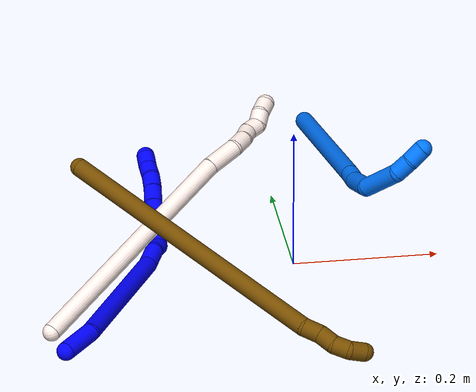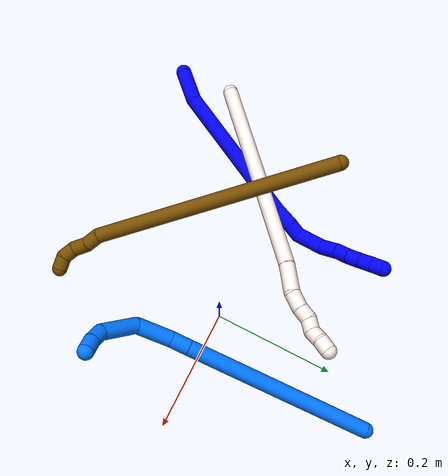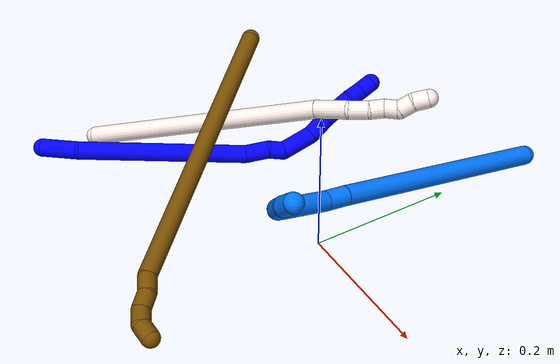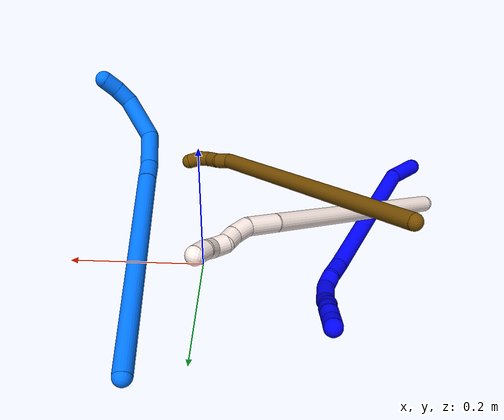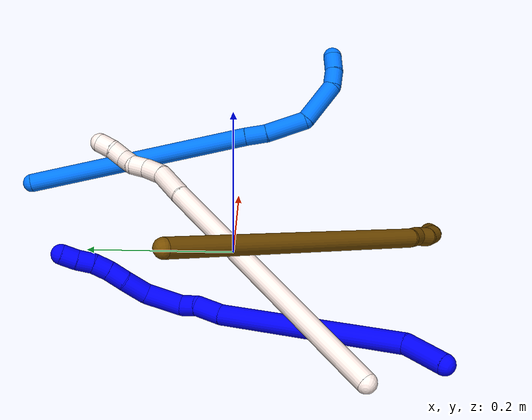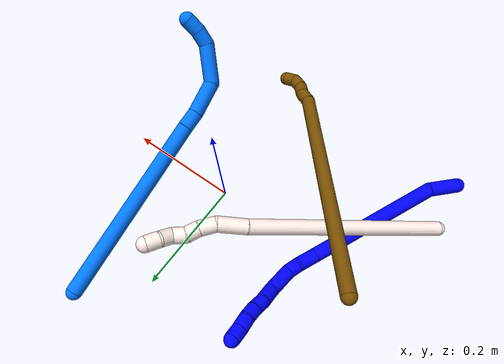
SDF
<sdf version="1.7">
 <world name="default">
  <model name="photoneo_s_sensor">
   <static>1</static>
   <pose>0 0 2 1.57079 1.57079 3.14159</pose>
   <link name="link">
    <inertial><mass>0.1</mass></inertial>
    <sensor name="sensor" type="depth">
     <update_rate>30</update_rate>
     <camera>
      <horizontal_fov>1.22</horizontal_fov>
      <image><width>1920</width><height>1200</height><format>B8G8R8</format></image>
      <clip><near>0.1</near><far>4</far></clip>
      <depth_camera><output>points</output></depth_camera>
     </camera>
     <plugin name="camera_plugin" filename="libgazebo_ros_depth_camera.so">
      <baseline>0.2</baseline>
      <alwaysOn>1</alwaysOn>
      <updateRate>0.0</updateRate>
      <cameraName>camera_ir</cameraName>
      <imageTopicName>/camera/color/image_raw</imageTopicName>
      <cameraInfoTopicName>/camera/color/camera_info</cameraInfoTopicName>
      <depthImageTopicName>/camera/depth/image_raw</depthImageTopicName>
      <depthImageCameraInfoTopicName>/camera/depth/camera_info</depthImageCameraInfoTopicName>
      <pointCloudTopicName>/camera/depth/points</pointCloudTopicName>
      <frameName>fr_optical</frameName>
      <pointCloudCutoff>0.1</pointCloudCutoff>
      <pointCloudCutoffMax>2.0</pointCloudCutoffMax>
      <distortionK1>0</distortionK1>
      <distortionK2>0</distortionK2>
      <distortionK3>0</distortionK3>
      <distortionT1>0</distortionT1>
      <distortionT2>0</distortionT2>
      <CxPrime>0</CxPrime>
      <Cx>0</Cx>
      <Cy>0</Cy>
      <focalLength>0</focalLength>
      <hackBaseline>0</hackBaseline>
     </plugin>
    </sensor>
   </link>
  </model>
  <model name="bin">
   <static>1</static>
   <link name="bottom">
    <collision name="collision-bottom">
     <pose>0 0 -0.01 0 -0 0</pose>
     <geometry><box><size>0.8 0.6 0.02</size></box></geometry>
     <surface>
      <friction><ode><mu>100</mu><mu2>100</mu2></ode></friction>
      <contact><collide_bitmask>65535</collide_bitmask></contact>
     </surface>
    </collision>
   </link>
   <link name="west_wall">
    <collision name="collision-west_wall">
     <pose>-0.41 0 0.1 0 -0 0</pose>
     <geometry><box><size>0.02 0.6 0.2</size></box></geometry>
     <surface>
      <friction><ode><mu>100</mu><mu2>100</mu2></ode></friction>
      <contact><collide_bitmask>65535</collide_bitmask></contact>
     </surface>
    </collision>
   </link>
   <link name="east_wall">
    <collision name="collision-east_wall">
     <pose>0.41 0 0.1 0 -0 0</pose>
     <geometry><box><size>0.02 0.6 0.2</size></box></geometry>
     <surface>
      <friction><ode><mu>100</mu><mu2>100</mu2></ode></friction>
      <contact><collide_bitmask>65535</collide_bitmask></contact>
     </surface>
    </collision>
   </link>
   <link name="south_wall">
    <collision name="collision-south_wall">
     <pose>0 -0.31 0.1 0 -0 0</pose>
     <geometry><box><size>0.8 0.02 0.2</size></box></geometry>
     <surface>
      <friction><ode><mu>100</mu><mu2>100</mu2></ode></friction>
      <contact><collide_bitmask>65535</collide_bitmask></contact>
     </surface>
    </collision>
   </link>
   <link name="north_wall">
    <collision name="collision-north_wall">
     <pose>0 0.31 0.1 0 -0 0</pose>
     <geometry><box><size>0.8 0.02 0.2</size></box></geometry>
     <surface>
      <friction><ode><mu>100</mu><mu2>100</mu2></ode></friction>
      <contact><collide_bitmask>65535</collide_bitmask></contact>
     </surface>
    </collision>
   </link>
  </model>
  <model name="1">
   <static>0</static>
   <link name="1">
    <collision name="collision-cylinder-e_1_1_4">
     <pose>0.000738 0.001942 -0.026256 -3.06776 0.028031 -0.725478</pose>
     <geometry><cylinder><radius>0.0125</radius><length>0.052676</length></cylinder></geometry>
     <surface>
      <friction><ode><mu>1.16</mu><mu2>1.16</mu2><slip1>0</slip1><slip2>0</slip2></ode></friction>
      <contact><ode><kp>1e+06</kp><kd>1</kd><max_vel>0</max_vel><min_depth>0.001</min_depth></ode></contact>
     </surface>
    </collision>
    <visual name="visual-cylinder-e_1_1_4">
     <pose>0.000738 0.001942 -0.026256 -3.06776 0.028031 -0.725478</pose>
     <geometry><cylinder><radius>0.0125</radius><length>0.052676</length></cylinder></geometry>
     <material><ambient>0 0 1 1</ambient></material>
    </visual>
    <collision name="collision-cylinder-e_2_4_5">
     <pose>-0.016686 0.046294 -0.15949 -2.76416 -0.156535 0.779291</pose>
     <geometry><cylinder><radius>0.0125</radius><length>0.233006</length></cylinder></geometry>
     <surface>
      <friction><ode><mu>1.16</mu><mu2>1.16</mu2><slip1>0</slip1><slip2>0</slip2></ode></friction>
      <contact><ode><kp>1e+06</kp><kd>1</kd><max_vel>0</max_vel><min_depth>0.001</min_depth></ode></contact>
     </surface>
    </collision>
    <visual name="visual-cylinder-e_2_4_5">
     <pose>-0.016686 0.046294 -0.15949 -2.76416 -0.156535 0.779291</pose>
     <geometry><cylinder><radius>0.0125</radius><length>0.233006</length></cylinder></geometry>
     <material><ambient>0 0 1 1</ambient></material>
    </visual>
    <collision name="collision-cylinder-e_3_5_6">
     <pose>-0.033446 0.095504 -0.281239 -2.71018 0.08602 -0.387885</pose>
     <geometry><cylinder><radius>0.0125</radius><length>0.032641</length></cylinder></geometry>
     <surface>
      <friction><ode><mu>1.16</mu><mu2>1.16</mu2><slip1>0</slip1><slip2>0</slip2></ode></friction>
      <contact><ode><kp>1e+06</kp><kd>1</kd><max_vel>0</max_vel><min_depth>0.001</min_depth></ode></contact>
     </surface>
    </collision>
    <visual name="visual-cylinder-e_3_5_6">
     <pose>-0.033446 0.095504 -0.281239 -2.71018 0.08602 -0.387885</pose>
     <geometry><cylinder><radius>0.0125</radius><length>0.032641</length></cylinder></geometry>
     <material><ambient>0 0 1 1</ambient></material>
    </visual>
    <collision name="collision-cylinder-e_4_6_7">
     <pose>-0.034839 0.106486 -0.305348 -2.72046 -0.266615 1.12068</pose>
     <geometry><cylinder><radius>0.0125</radius><length>0.021215</length></cylinder></geometry>
     <surface>
      <friction><ode><mu>1.16</mu><mu2>1.16</mu2><slip1>0</slip1><slip2>0</slip2></ode></friction>
      <contact><ode><kp>1e+06</kp><kd>1</kd><max_vel>0</max_vel><min_depth>0.001</min_depth></ode></contact>
     </surface>
    </collision>
    <visual name="visual-cylinder-e_4_6_7">
     <pose>-0.034839 0.106486 -0.305348 -2.72046 -0.266615 1.12068</pose>
     <geometry><cylinder><radius>0.0125</radius><length>0.021215</length></cylinder></geometry>
     <material><ambient>0 0 1 1</ambient></material>
    </visual>
    <collision name="collision-cylinder-e_5_7_8">
     <pose>-0.03236 0.1261 -0.330931 -2.38189 0.23118 -0.566029</pose>
     <geometry><cylinder><radius>0.0125</radius><length>0.046036</length></cylinder></geometry>
     <surface>
      <friction><ode><mu>1.16</mu><mu2>1.16</mu2><slip1>0</slip1><slip2>0</slip2></ode></friction>
      <contact><ode><kp>1e+06</kp><kd>1</kd><max_vel>0</max_vel><min_depth>0.001</min_depth></ode></contact>
     </surface>
    </collision>
    <visual name="visual-cylinder-e_5_7_8">
     <pose>-0.03236 0.1261 -0.330931 -2.38189 0.23118 -0.566029</pose>
     <geometry><cylinder><radius>0.0125</radius><length>0.046036</length></cylinder></geometry>
     <material><ambient>0 0 1 1</ambient></material>
    </visual>
    <collision name="collision-cylinder-e_6_8_9">
     <pose>-0.019172 0.151913 -0.355481 -2.24547 0.536939 -1.03969</pose>
     <geometry><cylinder><radius>0.0125</radius><length>0.030942</length></cylinder></geometry>
     <surface>
      <friction><ode><mu>1.16</mu><mu2>1.16</mu2><slip1>0</slip1><slip2>0</slip2></ode></friction>
      <contact><ode><kp>1e+06</kp><kd>1</kd><max_vel>0</max_vel><min_depth>0.001</min_depth></ode></contact>
     </surface>
    </collision>
    <visual name="visual-cylinder-e_6_8_9">
     <pose>-0.019172 0.151913 -0.355481 -2.24547 0.536939 -1.03969</pose>
     <geometry><cylinder><radius>0.0125</radius><length>0.030942</length></cylinder></geometry>
     <material><ambient>0 0 1 1</ambient></material>
    </visual>
    <collision name="collision-cylinder-e_7_9_10">
     <pose>-0.005789 0.16909 -0.371214 -2.40075 0.497577 -1.15862</pose>
     <geometry><cylinder><radius>0.0125</radius><length>0.022916</length></cylinder></geometry>
     <surface>
      <friction><ode><mu>1.16</mu><mu2>1.16</mu2><slip1>0</slip1><slip2>0</slip2></ode></friction>
      <contact><ode><kp>1e+06</kp><kd>1</kd><max_vel>0</max_vel><min_depth>0.001</min_depth></ode></contact>
     </surface>
    </collision>
    <visual name="visual-cylinder-e_7_9_10">
     <pose>-0.005789 0.16909 -0.371214 -2.40075 0.497577 -1.15862</pose>
     <geometry><cylinder><radius>0.0125</radius><length>0.022916</length></cylinder></geometry>
     <material><ambient>0 0 1 1</ambient></material>
    </visual>
    <collision name="collision-cylinder-e_8_10_11">
     <pose>0.003694 0.182888 -0.384783 -2.29058 0.407026 -0.85462</pose>
     <geometry><cylinder><radius>0.0125</radius><length>0.020282</length></cylinder></geometry>
     <surface>
      <friction><ode><mu>1.16</mu><mu2>1.16</mu2><slip1>0</slip1><slip2>0</slip2></ode></friction>
      <contact><ode><kp>1e+06</kp><kd>1</kd><max_vel>0</max_vel><min_depth>0.001</min_depth></ode></contact>
     </surface>
    </collision>
    <visual name="visual-cylinder-e_8_10_11">
     <pose>0.003694 0.182888 -0.384783 -2.29058 0.407026 -0.85462</pose>
     <geometry><cylinder><radius>0.0125</radius><length>0.020282</length></cylinder></geometry>
     <material><ambient>0 0 1 1</ambient></material>
    </visual>
    <collision name="collision-cylinder-e_9_11_12">
     <pose>0.009529 0.197787 -0.396853 -2.21496 0.182217 -0.361751</pose>
     <geometry><cylinder><radius>0.0125</radius><length>0.020086</length></cylinder></geometry>
     <surface>
      <friction><ode><mu>1.16</mu><mu2>1.16</mu2><slip1>0</slip1><slip2>0</slip2></ode></friction>
      <contact><ode><kp>1e+06</kp><kd>1</kd><max_vel>0</max_vel><min_depth>0.001</min_depth></ode></contact>
     </surface>
    </collision>
    <visual name="visual-cylinder-e_9_11_12">
     <pose>0.009529 0.197787 -0.396853 -2.21496 0.182217 -0.361751</pose>
     <geometry><cylinder><radius>0.0125</radius><length>0.020086</length></cylinder></geometry>
     <material><ambient>0 0 1 1</ambient></material>
    </visual>
    <collision name="collision-cylinder-e_10_12_2">
     <pose>0.014414 0.213034 -0.408998 -2.27268 0.308344 -0.64633</pose>
     <geometry><cylinder><radius>0.0125</radius><length>0.020201</length></cylinder></geometry>
     <surface>
      <friction><ode><mu>1.16</mu><mu2>1.16</mu2><slip1>0</slip1><slip2>0</slip2></ode></friction>
      <contact><ode><kp>1e+06</kp><kd>1</kd><max_vel>0</max_vel><min_depth>0.001</min_depth></ode></contact>
     </surface>
    </collision>
    <visual name="visual-cylinder-e_10_12_2">
     <pose>0.014414 0.213034 -0.408998 -2.27268 0.308344 -0.64633</pose>
     <geometry><cylinder><radius>0.0125</radius><length>0.020201</length></cylinder></geometry>
     <material><ambient>0 0 1 1</ambient></material>
    </visual>
    <collision name="collision-sphere-2">
     <pose>0.017479 0.220383 -0.415212 0 -0 0</pose>
     <geometry><sphere><radius>0.0125</radius></sphere></geometry>
     <surface>
      <friction><ode><mu>1.16</mu><mu2>1.16</mu2><slip1>0</slip1><slip2>0</slip2></ode></friction>
      <contact><ode><kp>1e+06</kp><kd>1</kd><max_vel>0</max_vel><min_depth>0.001</min_depth></ode></contact>
     </surface>
    </collision>
    <visual name="visual-sphere-2">
     <pose>0.017479 0.220383 -0.415212 0 -0 0</pose>
     <geometry><sphere><radius>0.0125</radius></sphere></geometry>
     <material><ambient>0 0 1 1</ambient></material>
    </visual>
    <collision name="collision-sphere-12">
     <pose>0.011348 0.205685 -0.402784 0 -0 0</pose>
     <geometry><sphere><radius>0.0125</radius></sphere></geometry>
     <surface>
      <friction><ode><mu>1.16</mu><mu2>1.16</mu2><slip1>0</slip1><slip2>0</slip2></ode></friction>
      <contact><ode><kp>1e+06</kp><kd>1</kd><max_vel>0</max_vel><min_depth>0.001</min_depth></ode></contact>
     </surface>
    </collision>
    <visual name="visual-sphere-12">
     <pose>0.011348 0.205685 -0.402784 0 -0 0</pose>
     <geometry><sphere><radius>0.0125</radius></sphere></geometry>
     <material><ambient>0 0 1 1</ambient></material>
    </visual>
    <collision name="collision-sphere-11">
     <pose>0.007709 0.18989 -0.390922 0 -0 0</pose>
     <geometry><sphere><radius>0.0125</radius></sphere></geometry>
     <surface>
      <friction><ode><mu>1.16</mu><mu2>1.16</mu2><slip1>0</slip1><slip2>0</slip2></ode></friction>
      <contact><ode><kp>1e+06</kp><kd>1</kd><max_vel>0</max_vel><min_depth>0.001</min_depth></ode></contact>
     </surface>
    </collision>
    <visual name="visual-sphere-11">
     <pose>0.007709 0.18989 -0.390922 0 -0 0</pose>
     <geometry><sphere><radius>0.0125</radius></sphere></geometry>
     <material><ambient>0 0 1 1</ambient></material>
    </visual>
    <collision name="collision-sphere-10">
     <pose>-0.00032 0.175885 -0.378644 0 -0 0</pose>
     <geometry><sphere><radius>0.0125</radius></sphere></geometry>
     <surface>
      <friction><ode><mu>1.16</mu><mu2>1.16</mu2><slip1>0</slip1><slip2>0</slip2></ode></friction>
      <contact><ode><kp>1e+06</kp><kd>1</kd><max_vel>0</max_vel><min_depth>0.001</min_depth></ode></contact>
     </surface>
    </collision>
    <visual name="visual-sphere-10">
     <pose>-0.00032 0.175885 -0.378644 0 -0 0</pose>
     <geometry><sphere><radius>0.0125</radius></sphere></geometry>
     <material><ambient>0 0 1 1</ambient></material>
    </visual>
    <collision name="collision-sphere-9">
     <pose>-0.011258 0.162294 -0.363785 0 -0 0</pose>
     <geometry><sphere><radius>0.0125</radius></sphere></geometry>
     <surface>
      <friction><ode><mu>1.16</mu><mu2>1.16</mu2><slip1>0</slip1><slip2>0</slip2></ode></friction>
      <contact><ode><kp>1e+06</kp><kd>1</kd><max_vel>0</max_vel><min_depth>0.001</min_depth></ode></contact>
     </surface>
    </collision>
    <visual name="visual-sphere-9">
     <pose>-0.011258 0.162294 -0.363785 0 -0 0</pose>
     <geometry><sphere><radius>0.0125</radius></sphere></geometry>
     <material><ambient>0 0 1 1</ambient></material>
    </visual>
    <collision name="collision-sphere-4">
     <pose>0.001476 0.003884 -0.052512 0 -0 0</pose>
     <geometry><sphere><radius>0.0125</radius></sphere></geometry>
     <surface>
      <friction><ode><mu>1.16</mu><mu2>1.16</mu2><slip1>0</slip1><slip2>0</slip2></ode></friction>
      <contact><ode><kp>1e+06</kp><kd>1</kd><max_vel>0</max_vel><min_depth>0.001</min_depth></ode></contact>
     </surface>
    </collision>
    <visual name="visual-sphere-4">
     <pose>0.001476 0.003884 -0.052512 0 -0 0</pose>
     <geometry><sphere><radius>0.0125</radius></sphere></geometry>
     <material><ambient>0 0 1 1</ambient></material>
    </visual>
    <collision name="collision-sphere-1">
     <geometry><sphere><radius>0.0125</radius></sphere></geometry>
     <surface>
      <friction><ode><mu>1.16</mu><mu2>1.16</mu2><slip1>0</slip1><slip2>0</slip2></ode></friction>
      <contact><ode><kp>1e+06</kp><kd>1</kd><max_vel>0</max_vel><min_depth>0.001</min_depth></ode></contact>
     </surface>
    </collision>
    <visual name="visual-sphere-1">
     <geometry><sphere><radius>0.0125</radius></sphere></geometry>
     <material><ambient>0 0 1 1</ambient></material>
    </visual>
    <collision name="collision-sphere-8">
     <pose>-0.027085 0.141531 -0.347176 0 -0 0</pose>
     <geometry><sphere><radius>0.0125</radius></sphere></geometry>
     <surface>
      <friction><ode><mu>1.16</mu><mu2>1.16</mu2><slip1>0</slip1><slip2>0</slip2></ode></friction>
      <contact><ode><kp>1e+06</kp><kd>1</kd><max_vel>0</max_vel><min_depth>0.001</min_depth></ode></contact>
     </surface>
    </collision>
    <visual name="visual-sphere-8">
     <pose>-0.027085 0.141531 -0.347176 0 -0 0</pose>
     <geometry><sphere><radius>0.0125</radius></sphere></geometry>
     <material><ambient>0 0 1 1</ambient></material>
    </visual>
    <collision name="collision-sphere-5">
     <pose>-0.034848 0.088705 -0.266469 0 -0 0</pose>
     <geometry><sphere><radius>0.0125</radius></sphere></geometry>
     <surface>
      <friction><ode><mu>1.16</mu><mu2>1.16</mu2><slip1>0</slip1><slip2>0</slip2></ode></friction>
      <contact><ode><kp>1e+06</kp><kd>1</kd><max_vel>0</max_vel><min_depth>0.001</min_depth></ode></contact>
     </surface>
    </collision>
    <visual name="visual-sphere-5">
     <pose>-0.034848 0.088705 -0.266469 0 -0 0</pose>
     <geometry><sphere><radius>0.0125</radius></sphere></geometry>
     <material><ambient>0 0 1 1</ambient></material>
    </visual>
    <collision name="collision-sphere-6">
     <pose>-0.032044 0.102303 -0.296009 0 -0 0</pose>
     <geometry><sphere><radius>0.0125</radius></sphere></geometry>
     <surface>
      <friction><ode><mu>1.16</mu><mu2>1.16</mu2><slip1>0</slip1><slip2>0</slip2></ode></friction>
      <contact><ode><kp>1e+06</kp><kd>1</kd><max_vel>0</max_vel><min_depth>0.001</min_depth></ode></contact>
     </surface>
    </collision>
    <visual name="visual-sphere-6">
     <pose>-0.032044 0.102303 -0.296009 0 -0 0</pose>
     <geometry><sphere><radius>0.0125</radius></sphere></geometry>
     <material><ambient>0 0 1 1</ambient></material>
    </visual>
    <collision name="collision-sphere-7">
     <pose>-0.037634 0.110669 -0.314686 0 -0 0</pose>
     <geometry><sphere><radius>0.0125</radius></sphere></geometry>
     <surface>
      <friction><ode><mu>1.16</mu><mu2>1.16</mu2><slip1>0</slip1><slip2>0</slip2></ode></friction>
      <contact><ode><kp>1e+06</kp><kd>1</kd><max_vel>0</max_vel><min_depth>0.001</min_depth></ode></contact>
     </surface>
    </collision>
    <visual name="visual-sphere-7">
     <pose>-0.037634 0.110669 -0.314686 0 -0 0</pose>
     <geometry><sphere><radius>0.0125</radius></sphere></geometry>
     <material><ambient>0 0 1 1</ambient></material>
    </visual>
    <inertial>
     <pose>-0.014676 0.085263 -0.225962 0 -0 0</pose>
     <mass>0.5</mass>
     <inertia>
      <ixx>0.001494</ixx>
      <ixy>0</ixy>
      <ixz>0</ixz>
      <iyy>5.2e-05</iyy>
      <iyz>0</iyz>
      <izz>-0.000277</izz>
     </inertia>
    </inertial>
   </link>
   <pose>-0.33686 -0.240636 0.030807 2.17457 -1.50088 -1.43575</pose>
  </model>
  <model name="11">
   <static>0</static>
   <link name="11">
    <collision name="collision-cylinder-e_1_1_4">
     <pose>0.090774 0.085733 -0.119202 -2.51808 0.553708 -1.44526</pose>
     <geometry><cylinder><radius>0.0125</radius><length>0.345248</length></cylinder></geometry>
     <surface>
      <friction><ode><mu>1.16</mu><mu2>1.16</mu2><slip1>0</slip1><slip2>0</slip2></ode></friction>
      <contact><ode><kp>1e+06</kp><kd>1</kd><max_vel>0</max_vel><min_depth>0.001</min_depth></ode></contact>
     </surface>
    </collision>
    <visual name="visual-cylinder-e_1_1_4">
     <pose>0.090774 0.085733 -0.119202 -2.51808 0.553708 -1.44526</pose>
     <geometry><cylinder><radius>0.0125</radius><length>0.345248</length></cylinder></geometry>
     <material><ambient>1 0.933333 0.909804 1</ambient></material>
    </visual>
    <collision name="collision-cylinder-e_2_4_5">
     <pose>0.191119 0.182999 -0.256247 -2.56781 0.423283 -1.25889</pose>
     <geometry><cylinder><radius>0.0125</radius><length>0.046604</length></cylinder></geometry>
     <surface>
      <friction><ode><mu>1.16</mu><mu2>1.16</mu2><slip1>0</slip1><slip2>0</slip2></ode></friction>
      <contact><ode><kp>1e+06</kp><kd>1</kd><max_vel>0</max_vel><min_depth>0.001</min_depth></ode></contact>
     </surface>
    </collision>
    <visual name="visual-cylinder-e_2_4_5">
     <pose>0.191119 0.182999 -0.256247 -2.56781 0.423283 -1.25889</pose>
     <geometry><cylinder><radius>0.0125</radius><length>0.046604</length></cylinder></geometry>
     <material><ambient>1 0.933333 0.909804 1</ambient></material>
    </visual>
    <collision name="collision-cylinder-e_3_5_6">
     <pose>0.206149 0.204403 -0.281019 -2.18278 0.425012 -0.786819</pose>
     <geometry><cylinder><radius>0.0125</radius><length>0.026477</length></cylinder></geometry>
     <surface>
      <friction><ode><mu>1.16</mu><mu2>1.16</mu2><slip1>0</slip1><slip2>0</slip2></ode></friction>
      <contact><ode><kp>1e+06</kp><kd>1</kd><max_vel>0</max_vel><min_depth>0.001</min_depth></ode></contact>
     </surface>
    </collision>
    <visual name="visual-cylinder-e_3_5_6">
     <pose>0.206149 0.204403 -0.281019 -2.18278 0.425012 -0.786819</pose>
     <geometry><cylinder><radius>0.0125</radius><length>0.026477</length></cylinder></geometry>
     <material><ambient>1 0.933333 0.909804 1</ambient></material>
    </visual>
    <collision name="collision-cylinder-e_4_6_7">
     <pose>0.216726 0.222567 -0.291243 -1.94907 0.520797 -0.748233</pose>
     <geometry><cylinder><radius>0.0125</radius><length>0.020573</length></cylinder></geometry>
     <surface>
      <friction><ode><mu>1.16</mu><mu2>1.16</mu2><slip1>0</slip1><slip2>0</slip2></ode></friction>
      <contact><ode><kp>1e+06</kp><kd>1</kd><max_vel>0</max_vel><min_depth>0.001</min_depth></ode></contact>
     </surface>
    </collision>
    <visual name="visual-cylinder-e_4_6_7">
     <pose>0.216726 0.222567 -0.291243 -1.94907 0.520797 -0.748233</pose>
     <geometry><cylinder><radius>0.0125</radius><length>0.020573</length></cylinder></geometry>
     <material><ambient>1 0.933333 0.909804 1</ambient></material>
    </visual>
    <collision name="collision-cylinder-e_5_7_8">
     <pose>0.22532 0.237235 -0.301625 -2.4089 0.349638 -0.862863</pose>
     <geometry><cylinder><radius>0.0125</radius><length>0.020294</length></cylinder></geometry>
     <surface>
      <friction><ode><mu>1.16</mu><mu2>1.16</mu2><slip1>0</slip1><slip2>0</slip2></ode></friction>
      <contact><ode><kp>1e+06</kp><kd>1</kd><max_vel>0</max_vel><min_depth>0.001</min_depth></ode></contact>
     </surface>
    </collision>
    <visual name="visual-cylinder-e_5_7_8">
     <pose>0.22532 0.237235 -0.301625 -2.4089 0.349638 -0.862863</pose>
     <geometry><cylinder><radius>0.0125</radius><length>0.020294</length></cylinder></geometry>
     <material><ambient>1 0.933333 0.909804 1</ambient></material>
    </visual>
    <collision name="collision-cylinder-e_6_8_9">
     <pose>0.236944 0.248176 -0.312333 -2.24151 0.950018 -1.63329</pose>
     <geometry><cylinder><radius>0.0125</radius><length>0.020033</length></cylinder></geometry>
     <surface>
      <friction><ode><mu>1.16</mu><mu2>1.16</mu2><slip1>0</slip1><slip2>0</slip2></ode></friction>
      <contact><ode><kp>1e+06</kp><kd>1</kd><max_vel>0</max_vel><min_depth>0.001</min_depth></ode></contact>
     </surface>
    </collision>
    <visual name="visual-cylinder-e_6_8_9">
     <pose>0.236944 0.248176 -0.312333 -2.24151 0.950018 -1.63329</pose>
     <geometry><cylinder><radius>0.0125</radius><length>0.020033</length></cylinder></geometry>
     <material><ambient>1 0.933333 0.909804 1</ambient></material>
    </visual>
    <collision name="collision-cylinder-e_7_9_2">
     <pose>0.251513 0.259642 -0.320309 -2.13367 0.666708 -1.12141</pose>
     <geometry><cylinder><radius>0.0125</radius><length>0.02077</length></cylinder></geometry>
     <surface>
      <friction><ode><mu>1.16</mu><mu2>1.16</mu2><slip1>0</slip1><slip2>0</slip2></ode></friction>
      <contact><ode><kp>1e+06</kp><kd>1</kd><max_vel>0</max_vel><min_depth>0.001</min_depth></ode></contact>
     </surface>
    </collision>
    <visual name="visual-cylinder-e_7_9_2">
     <pose>0.251513 0.259642 -0.320309 -2.13367 0.666708 -1.12141</pose>
     <geometry><cylinder><radius>0.0125</radius><length>0.02077</length></cylinder></geometry>
     <material><ambient>1 0.933333 0.909804 1</ambient></material>
    </visual>
    <collision name="collision-sphere-2">
     <pose>0.257936 0.266544 -0.324664 0 -0 0</pose>
     <geometry><sphere><radius>0.0125</radius></sphere></geometry>
     <surface>
      <friction><ode><mu>1.16</mu><mu2>1.16</mu2><slip1>0</slip1><slip2>0</slip2></ode></friction>
      <contact><ode><kp>1e+06</kp><kd>1</kd><max_vel>0</max_vel><min_depth>0.001</min_depth></ode></contact>
     </surface>
    </collision>
    <visual name="visual-sphere-2">
     <pose>0.257936 0.266544 -0.324664 0 -0 0</pose>
     <geometry><sphere><radius>0.0125</radius></sphere></geometry>
     <material><ambient>1 0.933333 0.909804 1</ambient></material>
    </visual>
    <collision name="collision-sphere-9">
     <pose>0.245091 0.25274 -0.315954 0 -0 0</pose>
     <geometry><sphere><radius>0.0125</radius></sphere></geometry>
     <surface>
      <friction><ode><mu>1.16</mu><mu2>1.16</mu2><slip1>0</slip1><slip2>0</slip2></ode></friction>
      <contact><ode><kp>1e+06</kp><kd>1</kd><max_vel>0</max_vel><min_depth>0.001</min_depth></ode></contact>
     </surface>
    </collision>
    <visual name="visual-sphere-9">
     <pose>0.245091 0.25274 -0.315954 0 -0 0</pose>
     <geometry><sphere><radius>0.0125</radius></sphere></geometry>
     <material><ambient>1 0.933333 0.909804 1</ambient></material>
    </visual>
    <collision name="collision-sphere-4">
     <pose>0.181547 0.171466 -0.238404 0 -0 0</pose>
     <geometry><sphere><radius>0.0125</radius></sphere></geometry>
     <surface>
      <friction><ode><mu>1.16</mu><mu2>1.16</mu2><slip1>0</slip1><slip2>0</slip2></ode></friction>
      <contact><ode><kp>1e+06</kp><kd>1</kd><max_vel>0</max_vel><min_depth>0.001</min_depth></ode></contact>
     </surface>
    </collision>
    <visual name="visual-sphere-4">
     <pose>0.181547 0.171466 -0.238404 0 -0 0</pose>
     <geometry><sphere><radius>0.0125</radius></sphere></geometry>
     <material><ambient>1 0.933333 0.909804 1</ambient></material>
    </visual>
    <collision name="collision-sphere-1">
     <geometry><sphere><radius>0.0125</radius></sphere></geometry>
     <surface>
      <friction><ode><mu>1.16</mu><mu2>1.16</mu2><slip1>0</slip1><slip2>0</slip2></ode></friction>
      <contact><ode><kp>1e+06</kp><kd>1</kd><max_vel>0</max_vel><min_depth>0.001</min_depth></ode></contact>
     </surface>
    </collision>
    <visual name="visual-sphere-1">
     <geometry><sphere><radius>0.0125</radius></sphere></geometry>
     <material><ambient>1 0.933333 0.909804 1</ambient></material>
    </visual>
    <collision name="collision-sphere-8">
     <pose>0.228796 0.243612 -0.308712 0 -0 0</pose>
     <geometry><sphere><radius>0.0125</radius></sphere></geometry>
     <surface>
      <friction><ode><mu>1.16</mu><mu2>1.16</mu2><slip1>0</slip1><slip2>0</slip2></ode></friction>
      <contact><ode><kp>1e+06</kp><kd>1</kd><max_vel>0</max_vel><min_depth>0.001</min_depth></ode></contact>
     </surface>
    </collision>
    <visual name="visual-sphere-8">
     <pose>0.228796 0.243612 -0.308712 0 -0 0</pose>
     <geometry><sphere><radius>0.0125</radius></sphere></geometry>
     <material><ambient>1 0.933333 0.909804 1</ambient></material>
    </visual>
    <collision name="collision-sphere-5">
     <pose>0.20069 0.194531 -0.27409 0 -0 0</pose>
     <geometry><sphere><radius>0.0125</radius></sphere></geometry>
     <surface>
      <friction><ode><mu>1.16</mu><mu2>1.16</mu2><slip1>0</slip1><slip2>0</slip2></ode></friction>
      <contact><ode><kp>1e+06</kp><kd>1</kd><max_vel>0</max_vel><min_depth>0.001</min_depth></ode></contact>
     </surface>
    </collision>
    <visual name="visual-sphere-5">
     <pose>0.20069 0.194531 -0.27409 0 -0 0</pose>
     <geometry><sphere><radius>0.0125</radius></sphere></geometry>
     <material><ambient>1 0.933333 0.909804 1</ambient></material>
    </visual>
    <collision name="collision-sphere-6">
     <pose>0.211607 0.214275 -0.287948 0 -0 0</pose>
     <geometry><sphere><radius>0.0125</radius></sphere></geometry>
     <surface>
      <friction><ode><mu>1.16</mu><mu2>1.16</mu2><slip1>0</slip1><slip2>0</slip2></ode></friction>
      <contact><ode><kp>1e+06</kp><kd>1</kd><max_vel>0</max_vel><min_depth>0.001</min_depth></ode></contact>
     </surface>
    </collision>
    <visual name="visual-sphere-6">
     <pose>0.211607 0.214275 -0.287948 0 -0 0</pose>
     <geometry><sphere><radius>0.0125</radius></sphere></geometry>
     <material><ambient>1 0.933333 0.909804 1</ambient></material>
    </visual>
    <collision name="collision-sphere-7">
     <pose>0.221844 0.230859 -0.294538 0 -0 0</pose>
     <geometry><sphere><radius>0.0125</radius></sphere></geometry>
     <surface>
      <friction><ode><mu>1.16</mu><mu2>1.16</mu2><slip1>0</slip1><slip2>0</slip2></ode></friction>
      <contact><ode><kp>1e+06</kp><kd>1</kd><max_vel>0</max_vel><min_depth>0.001</min_depth></ode></contact>
     </surface>
    </collision>
    <visual name="visual-sphere-7">
     <pose>0.221844 0.230859 -0.294538 0 -0 0</pose>
     <geometry><sphere><radius>0.0125</radius></sphere></geometry>
     <material><ambient>1 0.933333 0.909804 1</ambient></material>
    </visual>
    <inertial>
     <pose>0.129413 0.126595 -0.17112 0 -0 0</pose>
     <mass>0.5</mass>
     <inertia>
      <ixx>-0.002526</ixx>
      <ixy>0</ixy>
      <ixz>0</ixz>
      <iyy>-0.0022</iyy>
      <iyz>0</iyz>
      <izz>-0.003565</izz>
     </inertia>
    </inertial>
   </link>
   <pose>-0.347364 -0.156962 0.012495 -1.99341 -0.958442 1.81896</pose>
  </model>
  <model name="12">
   <static>0</static>
   <link name="12">
    <collision name="collision-cylinder-e_1_1_4">
     <pose>0.154065 -0.121581 -0.058463 2.01901 0.851598 1.24982</pose>
     <geometry><cylinder><radius>0.0125</radius><length>0.409566</length></cylinder></geometry>
     <surface>
      <friction><ode><mu>1.16</mu><mu2>1.16</mu2><slip1>0</slip1><slip2>0</slip2></ode></friction>
      <contact><ode><kp>1e+06</kp><kd>1</kd><max_vel>0</max_vel><min_depth>0.001</min_depth></ode></contact>
     </surface>
    </collision>
    <visual name="visual-cylinder-e_1_1_4">
     <pose>0.154065 -0.121581 -0.058463 2.01901 0.851598 1.24982</pose>
     <geometry><cylinder><radius>0.0125</radius><length>0.409566</length></cylinder></geometry>
     <material><ambient>0.466667 0.301961 0 1</ambient></material>
    </visual>
    <collision name="collision-cylinder-e_2_4_5">
     <pose>0.314518 -0.250743 -0.123677 2.29832 0.561702 1.14309</pose>
     <geometry><cylinder><radius>0.0125</radius><length>0.023986</length></cylinder></geometry>
     <surface>
      <friction><ode><mu>1.16</mu><mu2>1.16</mu2><slip1>0</slip1><slip2>0</slip2></ode></friction>
      <contact><ode><kp>1e+06</kp><kd>1</kd><max_vel>0</max_vel><min_depth>0.001</min_depth></ode></contact>
     </surface>
    </collision>
    <visual name="visual-cylinder-e_2_4_5">
     <pose>0.314518 -0.250743 -0.123677 2.29832 0.561702 1.14309</pose>
     <geometry><cylinder><radius>0.0125</radius><length>0.023986</length></cylinder></geometry>
     <material><ambient>0.466667 0.301961 0 1</ambient></material>
    </visual>
    <collision name="collision-cylinder-e_3_5_6">
     <pose>0.329321 -0.266017 -0.133816 1.98568 0.785875 1.1322</pose>
     <geometry><cylinder><radius>0.0125</radius><length>0.023789</length></cylinder></geometry>
     <surface>
      <friction><ode><mu>1.16</mu><mu2>1.16</mu2><slip1>0</slip1><slip2>0</slip2></ode></friction>
      <contact><ode><kp>1e+06</kp><kd>1</kd><max_vel>0</max_vel><min_depth>0.001</min_depth></ode></contact>
     </surface>
    </collision>
    <visual name="visual-cylinder-e_3_5_6">
     <pose>0.329321 -0.266017 -0.133816 1.98568 0.785875 1.1322</pose>
     <geometry><cylinder><radius>0.0125</radius><length>0.023789</length></cylinder></geometry>
     <material><ambient>0.466667 0.301961 0 1</ambient></material>
    </visual>
    <collision name="collision-cylinder-e_4_6_7">
     <pose>0.343662 -0.279925 -0.143641 2.37375 0.585051 1.28125</pose>
     <geometry><cylinder><radius>0.0125</radius><length>0.021463</length></cylinder></geometry>
     <surface>
      <friction><ode><mu>1.16</mu><mu2>1.16</mu2><slip1>0</slip1><slip2>0</slip2></ode></friction>
      <contact><ode><kp>1e+06</kp><kd>1</kd><max_vel>0</max_vel><min_depth>0.001</min_depth></ode></contact>
     </surface>
    </collision>
    <visual name="visual-cylinder-e_4_6_7">
     <pose>0.343662 -0.279925 -0.143641 2.37375 0.585051 1.28125</pose>
     <geometry><cylinder><radius>0.0125</radius><length>0.021463</length></cylinder></geometry>
     <material><ambient>0.466667 0.301961 0 1</ambient></material>
    </visual>
    <collision name="collision-cylinder-e_5_7_2">
     <pose>0.350199 -0.29192 -0.158938 2.56354 0.057643 0.193303</pose>
     <geometry><cylinder><radius>0.0125</radius><length>0.021196</length></cylinder></geometry>
     <surface>
      <friction><ode><mu>1.16</mu><mu2>1.16</mu2><slip1>0</slip1><slip2>0</slip2></ode></friction>
      <contact><ode><kp>1e+06</kp><kd>1</kd><max_vel>0</max_vel><min_depth>0.001</min_depth></ode></contact>
     </surface>
    </collision>
    <visual name="visual-cylinder-e_5_7_2">
     <pose>0.350199 -0.29192 -0.158938 2.56354 0.057643 0.193303</pose>
     <geometry><cylinder><radius>0.0125</radius><length>0.021196</length></cylinder></geometry>
     <material><ambient>0.466667 0.301961 0 1</ambient></material>
    </visual>
    <collision name="collision-sphere-2">
     <pose>0.350809 -0.297701 -0.1678 0 -0 0</pose>
     <geometry><sphere><radius>0.0125</radius></sphere></geometry>
     <surface>
      <friction><ode><mu>1.16</mu><mu2>1.16</mu2><slip1>0</slip1><slip2>0</slip2></ode></friction>
      <contact><ode><kp>1e+06</kp><kd>1</kd><max_vel>0</max_vel><min_depth>0.001</min_depth></ode></contact>
     </surface>
    </collision>
    <visual name="visual-sphere-2">
     <pose>0.350809 -0.297701 -0.1678 0 -0 0</pose>
     <geometry><sphere><radius>0.0125</radius></sphere></geometry>
     <material><ambient>0.466667 0.301961 0 1</ambient></material>
    </visual>
    <collision name="collision-sphere-7">
     <pose>0.349588 -0.286139 -0.150077 0 -0 0</pose>
     <geometry><sphere><radius>0.0125</radius></sphere></geometry>
     <surface>
      <friction><ode><mu>1.16</mu><mu2>1.16</mu2><slip1>0</slip1><slip2>0</slip2></ode></friction>
      <contact><ode><kp>1e+06</kp><kd>1</kd><max_vel>0</max_vel><min_depth>0.001</min_depth></ode></contact>
     </surface>
    </collision>
    <visual name="visual-sphere-7">
     <pose>0.349588 -0.286139 -0.150077 0 -0 0</pose>
     <geometry><sphere><radius>0.0125</radius></sphere></geometry>
     <material><ambient>0.466667 0.301961 0 1</ambient></material>
    </visual>
    <collision name="collision-sphere-6">
     <pose>0.337736 -0.273711 -0.137204 0 -0 0</pose>
     <geometry><sphere><radius>0.0125</radius></sphere></geometry>
     <surface>
      <friction><ode><mu>1.16</mu><mu2>1.16</mu2><slip1>0</slip1><slip2>0</slip2></ode></friction>
      <contact><ode><kp>1e+06</kp><kd>1</kd><max_vel>0</max_vel><min_depth>0.001</min_depth></ode></contact>
     </surface>
    </collision>
    <visual name="visual-sphere-6">
     <pose>0.337736 -0.273711 -0.137204 0 -0 0</pose>
     <geometry><sphere><radius>0.0125</radius></sphere></geometry>
     <material><ambient>0.466667 0.301961 0 1</ambient></material>
    </visual>
    <collision name="collision-sphere-5">
     <pose>0.320906 -0.258324 -0.130427 0 -0 0</pose>
     <geometry><sphere><radius>0.0125</radius></sphere></geometry>
     <surface>
      <friction><ode><mu>1.16</mu><mu2>1.16</mu2><slip1>0</slip1><slip2>0</slip2></ode></friction>
      <contact><ode><kp>1e+06</kp><kd>1</kd><max_vel>0</max_vel><min_depth>0.001</min_depth></ode></contact>
     </surface>
    </collision>
    <visual name="visual-sphere-5">
     <pose>0.320906 -0.258324 -0.130427 0 -0 0</pose>
     <geometry><sphere><radius>0.0125</radius></sphere></geometry>
     <material><ambient>0.466667 0.301961 0 1</ambient></material>
    </visual>
    <collision name="collision-sphere-1">
     <geometry><sphere><radius>0.0125</radius></sphere></geometry>
     <surface>
      <friction><ode><mu>1.16</mu><mu2>1.16</mu2><slip1>0</slip1><slip2>0</slip2></ode></friction>
      <contact><ode><kp>1e+06</kp><kd>1</kd><max_vel>0</max_vel><min_depth>0.001</min_depth></ode></contact>
     </surface>
    </collision>
    <visual name="visual-sphere-1">
     <geometry><sphere><radius>0.0125</radius></sphere></geometry>
     <material><ambient>0.466667 0.301961 0 1</ambient></material>
    </visual>
    <collision name="collision-sphere-4">
     <pose>0.30813 -0.243163 -0.116927 0 -0 0</pose>
     <geometry><sphere><radius>0.0125</radius></sphere></geometry>
     <surface>
      <friction><ode><mu>1.16</mu><mu2>1.16</mu2><slip1>0</slip1><slip2>0</slip2></ode></friction>
      <contact><ode><kp>1e+06</kp><kd>1</kd><max_vel>0</max_vel><min_depth>0.001</min_depth></ode></contact>
     </surface>
    </collision>
    <visual name="visual-sphere-4">
     <pose>0.30813 -0.243163 -0.116927 0 -0 0</pose>
     <geometry><sphere><radius>0.0125</radius></sphere></geometry>
     <material><ambient>0.466667 0.301961 0 1</ambient></material>
    </visual>
    <inertial>
     <pose>0.186554 -0.148667 -0.073093 0 -0 0</pose>
     <mass>0.5</mass>
     <inertia>
      <ixx>0.004818</ixx>
      <ixy>0</ixy>
      <ixz>0</ixz>
      <iyy>0.006479</iyy>
      <iyz>0</iyz>
      <izz>-0.000923</izz>
     </inertia>
    </inertial>
   </link>
   <pose>-0.284308 0.064629 0.137886 1.83892 -0.3067 -1.3156</pose>
  </model>
  <model name="14">
   <static>0</static>
   <link name="14">
    <collision name="collision-cylinder-e_1_1_4">
     <pose>-0.006945 -0.023019 -0.150313 2.98963 -0.045637 -0.582535</pose>
     <geometry><cylinder><radius>0.0125</radius><length>0.304448</length></cylinder></geometry>
     <surface>
      <friction><ode><mu>1.16</mu><mu2>1.16</mu2><slip1>0</slip1><slip2>0</slip2></ode></friction>
      <contact><ode><kp>1e+06</kp><kd>1</kd><max_vel>0</max_vel><min_depth>0.001</min_depth></ode></contact>
     </surface>
    </collision>
    <visual name="visual-cylinder-e_1_1_4">
     <pose>-0.006945 -0.023019 -0.150313 2.98963 -0.045637 -0.582535</pose>
     <geometry><cylinder><radius>0.0125</radius><length>0.304448</length></cylinder></geometry>
     <material><ambient>0 0.462745 1 1</ambient></material>
    </visual>
    <collision name="collision-cylinder-e_2_4_5">
     <pose>-0.014049 -0.047663 -0.315194 3.03049 -0.010907 -0.195506</pose>
     <geometry><cylinder><radius>0.0125</radius><length>0.029318</length></cylinder></geometry>
     <surface>
      <friction><ode><mu>1.16</mu><mu2>1.16</mu2><slip1>0</slip1><slip2>0</slip2></ode></friction>
      <contact><ode><kp>1e+06</kp><kd>1</kd><max_vel>0</max_vel><min_depth>0.001</min_depth></ode></contact>
     </surface>
    </collision>
    <visual name="visual-cylinder-e_2_4_5">
     <pose>-0.014049 -0.047663 -0.315194 3.03049 -0.010907 -0.195506</pose>
     <geometry><cylinder><radius>0.0125</radius><length>0.029318</length></cylinder></geometry>
     <material><ambient>0 0.462745 1 1</ambient></material>
    </visual>
    <collision name="collision-cylinder-e_3_5_6">
     <pose>-0.016549 -0.056536 -0.35684 2.88008 -0.083284 -0.61367</pose>
     <geometry><cylinder><radius>0.0125</radius><length>0.056257</length></cylinder></geometry>
     <surface>
      <friction><ode><mu>1.16</mu><mu2>1.16</mu2><slip1>0</slip1><slip2>0</slip2></ode></friction>
      <contact><ode><kp>1e+06</kp><kd>1</kd><max_vel>0</max_vel><min_depth>0.001</min_depth></ode></contact>
     </surface>
    </collision>
    <visual name="visual-cylinder-e_3_5_6">
     <pose>-0.016549 -0.056536 -0.35684 2.88008 -0.083284 -0.61367</pose>
     <geometry><cylinder><radius>0.0125</radius><length>0.056257</length></cylinder></geometry>
     <material><ambient>0 0.462745 1 1</ambient></material>
    </visual>
    <collision name="collision-cylinder-e_4_6_7">
     <pose>-0.021817 -0.088222 -0.402904 2.23128 -0.094332 -0.192288</pose>
     <geometry><cylinder><radius>0.0125</radius><length>0.062172</length></cylinder></geometry>
     <surface>
      <friction><ode><mu>1.16</mu><mu2>1.16</mu2><slip1>0</slip1><slip2>0</slip2></ode></friction>
      <contact><ode><kp>1e+06</kp><kd>1</kd><max_vel>0</max_vel><min_depth>0.001</min_depth></ode></contact>
     </surface>
    </collision>
    <visual name="visual-cylinder-e_4_6_7">
     <pose>-0.021817 -0.088222 -0.402904 2.23128 -0.094332 -0.192288</pose>
     <geometry><cylinder><radius>0.0125</radius><length>0.062172</length></cylinder></geometry>
     <material><ambient>0 0.462745 1 1</ambient></material>
    </visual>
    <collision name="collision-cylinder-e_5_7_8">
     <pose>-0.026433 -0.124462 -0.423778 1.72934 -0.140335 -0.164454</pose>
     <geometry><cylinder><radius>0.0125</radius><length>0.024137</length></cylinder></geometry>
     <surface>
      <friction><ode><mu>1.16</mu><mu2>1.16</mu2><slip1>0</slip1><slip2>0</slip2></ode></friction>
      <contact><ode><kp>1e+06</kp><kd>1</kd><max_vel>0</max_vel><min_depth>0.001</min_depth></ode></contact>
     </surface>
    </collision>
    <visual name="visual-cylinder-e_5_7_8">
     <pose>-0.026433 -0.124462 -0.423778 1.72934 -0.140335 -0.164454</pose>
     <geometry><cylinder><radius>0.0125</radius><length>0.024137</length></cylinder></geometry>
     <material><ambient>0 0.462745 1 1</ambient></material>
    </visual>
    <collision name="collision-cylinder-e_6_8_2">
     <pose>-0.029502 -0.147996 -0.425007 1.5148 -0.116989 -0.110628</pose>
     <geometry><cylinder><radius>0.0125</radius><length>0.023668</length></cylinder></geometry>
     <surface>
      <friction><ode><mu>1.16</mu><mu2>1.16</mu2><slip1>0</slip1><slip2>0</slip2></ode></friction>
      <contact><ode><kp>1e+06</kp><kd>1</kd><max_vel>0</max_vel><min_depth>0.001</min_depth></ode></contact>
     </surface>
    </collision>
    <visual name="visual-cylinder-e_6_8_2">
     <pose>-0.029502 -0.147996 -0.425007 1.5148 -0.116989 -0.110628</pose>
     <geometry><cylinder><radius>0.0125</radius><length>0.023668</length></cylinder></geometry>
     <material><ambient>0 0.462745 1 1</ambient></material>
    </visual>
    <collision name="collision-sphere-2">
     <pose>-0.030884 -0.159731 -0.424349 0 -0 0</pose>
     <geometry><sphere><radius>0.0125</radius></sphere></geometry>
     <surface>
      <friction><ode><mu>1.16</mu><mu2>1.16</mu2><slip1>0</slip1><slip2>0</slip2></ode></friction>
      <contact><ode><kp>1e+06</kp><kd>1</kd><max_vel>0</max_vel><min_depth>0.001</min_depth></ode></contact>
     </surface>
    </collision>
    <visual name="visual-sphere-2">
     <pose>-0.030884 -0.159731 -0.424349 0 -0 0</pose>
     <geometry><sphere><radius>0.0125</radius></sphere></geometry>
     <material><ambient>0 0.462745 1 1</ambient></material>
    </visual>
    <collision name="collision-sphere-4">
     <pose>-0.013889 -0.046038 -0.300626 0 -0 0</pose>
     <geometry><sphere><radius>0.0125</radius></sphere></geometry>
     <surface>
      <friction><ode><mu>1.16</mu><mu2>1.16</mu2><slip1>0</slip1><slip2>0</slip2></ode></friction>
      <contact><ode><kp>1e+06</kp><kd>1</kd><max_vel>0</max_vel><min_depth>0.001</min_depth></ode></contact>
     </surface>
    </collision>
    <visual name="visual-sphere-4">
     <pose>-0.013889 -0.046038 -0.300626 0 -0 0</pose>
     <geometry><sphere><radius>0.0125</radius></sphere></geometry>
     <material><ambient>0 0.462745 1 1</ambient></material>
    </visual>
    <collision name="collision-sphere-1">
     <geometry><sphere><radius>0.0125</radius></sphere></geometry>
     <surface>
      <friction><ode><mu>1.16</mu><mu2>1.16</mu2><slip1>0</slip1><slip2>0</slip2></ode></friction>
      <contact><ode><kp>1e+06</kp><kd>1</kd><max_vel>0</max_vel><min_depth>0.001</min_depth></ode></contact>
     </surface>
    </collision>
    <visual name="visual-sphere-1">
     <geometry><sphere><radius>0.0125</radius></sphere></geometry>
     <material><ambient>0 0.462745 1 1</ambient></material>
    </visual>
    <collision name="collision-sphere-8">
     <pose>-0.028121 -0.136262 -0.425664 0 -0 0</pose>
     <geometry><sphere><radius>0.0125</radius></sphere></geometry>
     <surface>
      <friction><ode><mu>1.16</mu><mu2>1.16</mu2><slip1>0</slip1><slip2>0</slip2></ode></friction>
      <contact><ode><kp>1e+06</kp><kd>1</kd><max_vel>0</max_vel><min_depth>0.001</min_depth></ode></contact>
     </surface>
    </collision>
    <visual name="visual-sphere-8">
     <pose>-0.028121 -0.136262 -0.425664 0 -0 0</pose>
     <geometry><sphere><radius>0.0125</radius></sphere></geometry>
     <material><ambient>0 0.462745 1 1</ambient></material>
    </visual>
    <collision name="collision-sphere-5">
     <pose>-0.014209 -0.049289 -0.329761 0 -0 0</pose>
     <geometry><sphere><radius>0.0125</radius></sphere></geometry>
     <surface>
      <friction><ode><mu>1.16</mu><mu2>1.16</mu2><slip1>0</slip1><slip2>0</slip2></ode></friction>
      <contact><ode><kp>1e+06</kp><kd>1</kd><max_vel>0</max_vel><min_depth>0.001</min_depth></ode></contact>
     </surface>
    </collision>
    <visual name="visual-sphere-5">
     <pose>-0.014209 -0.049289 -0.329761 0 -0 0</pose>
     <geometry><sphere><radius>0.0125</radius></sphere></geometry>
     <material><ambient>0 0.462745 1 1</ambient></material>
    </visual>
    <collision name="collision-sphere-6">
     <pose>-0.018889 -0.063783 -0.383918 0 -0 0</pose>
     <geometry><sphere><radius>0.0125</radius></sphere></geometry>
     <surface>
      <friction><ode><mu>1.16</mu><mu2>1.16</mu2><slip1>0</slip1><slip2>0</slip2></ode></friction>
      <contact><ode><kp>1e+06</kp><kd>1</kd><max_vel>0</max_vel><min_depth>0.001</min_depth></ode></contact>
     </surface>
    </collision>
    <visual name="visual-sphere-6">
     <pose>-0.018889 -0.063783 -0.383918 0 -0 0</pose>
     <geometry><sphere><radius>0.0125</radius></sphere></geometry>
     <material><ambient>0 0.462745 1 1</ambient></material>
    </visual>
    <collision name="collision-sphere-7">
     <pose>-0.024745 -0.112662 -0.421891 0 -0 0</pose>
     <geometry><sphere><radius>0.0125</radius></sphere></geometry>
     <surface>
      <friction><ode><mu>1.16</mu><mu2>1.16</mu2><slip1>0</slip1><slip2>0</slip2></ode></friction>
      <contact><ode><kp>1e+06</kp><kd>1</kd><max_vel>0</max_vel><min_depth>0.001</min_depth></ode></contact>
     </surface>
    </collision>
    <visual name="visual-sphere-7">
     <pose>-0.024745 -0.112662 -0.421891 0 -0 0</pose>
     <geometry><sphere><radius>0.0125</radius></sphere></geometry>
     <material><ambient>0 0.462745 1 1</ambient></material>
    </visual>
    <inertial>
     <pose>-0.0123 -0.047156 -0.240831 0 -0 0</pose>
     <mass>0.5</mass>
     <inertia>
      <ixx>0.000698</ixx>
      <ixy>0</ixy>
      <ixz>0</ixz>
      <iyy>-0.003298</iyy>
      <iyz>0</iyz>
      <izz>0.000463</izz>
     </inertia>
    </inertial>
   </link>
   <pose>0.060655 0.283315 0.072824 -1.72694 0.912381 -0.169134</pose>
  </model>
 </world>
</sdf>
